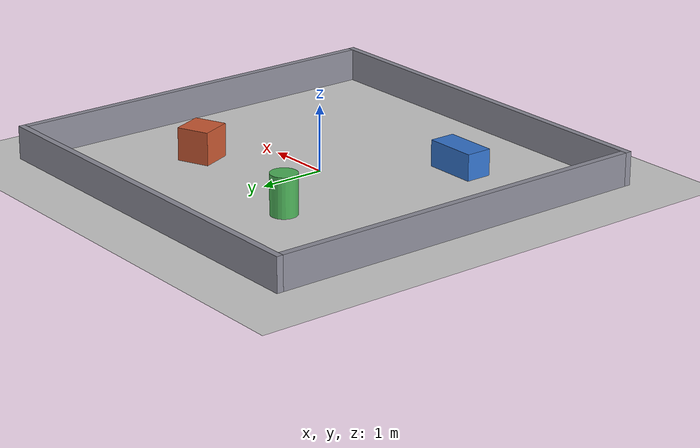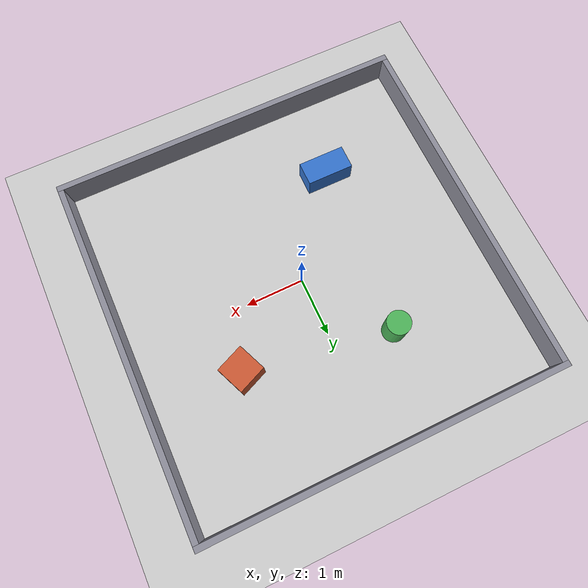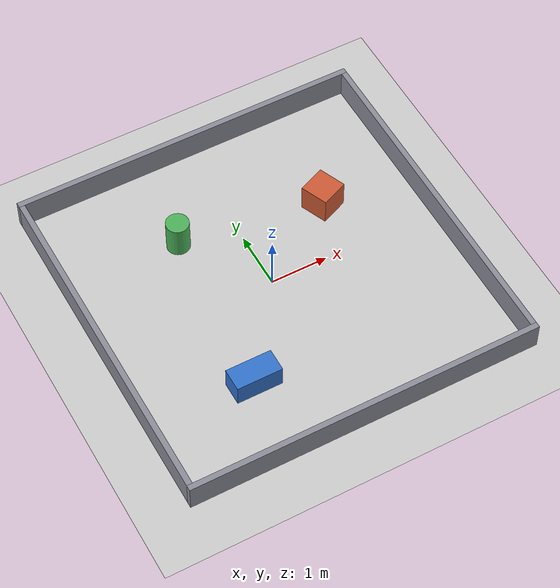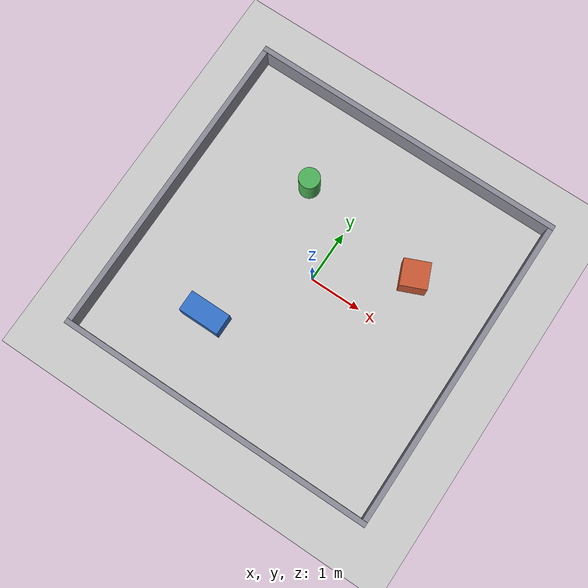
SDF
<?xml version="1.0" ?>
<sdf version="1.9">
  <world name="spiderx_fortress">

    <!-- GUI layout: the stock Fortress 6 layout (gui/gui.config) with the initial
         camera moved close to the robot and start_paused matching `-r`. -->
    <gui fullscreen="0">
      <!-- 3D scene -->
      <plugin filename="MinimalScene" name="3D View">
        <ignition-gui>
          <title>3D View</title>
          <property type="bool" key="showTitleBar">false</property>
          <property type="string" key="state">docked</property>
        </ignition-gui>

        <engine>ogre2</engine>
        <scene>scene</scene>
        <ambient_light>0.4 0.4 0.4</ambient_light>
        <background_color>0.8 0.8 0.8</background_color>
        <camera_pose>1.2 -1.2 0.75 0 0.41 2.37</camera_pose>
      </plugin>

      <!-- Plugins that add functionality to the scene -->
      <plugin filename="EntityContextMenuPlugin" name="Entity context menu">
        <ignition-gui>
          <property key="state" type="string">floating</property>
          <property key="width" type="double">5</property>
          <property key="height" type="double">5</property>
          <property key="showTitleBar" type="bool">false</property>
        </ignition-gui>
      </plugin>
      <plugin filename="GzSceneManager" name="Scene Manager">
        <ignition-gui>
          <property key="resizable" type="bool">false</property>
          <property key="width" type="double">5</property>
          <property key="height" type="double">5</property>
          <property key="state" type="string">floating</property>
          <property key="showTitleBar" type="bool">false</property>
        </ignition-gui>
      </plugin>
      <plugin filename="InteractiveViewControl" name="Interactive view control">
        <ignition-gui>
          <property key="resizable" type="bool">false</property>
          <property key="width" type="double">5</property>
          <property key="height" type="double">5</property>
          <property key="state" type="string">floating</property>
          <property key="showTitleBar" type="bool">false</property>
        </ignition-gui>
      </plugin>
      <plugin filename="CameraTracking" name="Camera Tracking">
        <ignition-gui>
          <property key="resizable" type="bool">false</property>
          <property key="width" type="double">5</property>
          <property key="height" type="double">5</property>
          <property key="state" type="string">floating</property>
          <property key="showTitleBar" type="bool">false</property>
        </ignition-gui>
      </plugin>
      <plugin filename="MarkerManager" name="Marker manager">
        <ignition-gui>
          <property key="resizable" type="bool">false</property>
          <property key="width" type="double">5</property>
          <property key="height" type="double">5</property>
          <property key="state" type="string">floating</property>
          <property key="showTitleBar" type="bool">false</property>
        </ignition-gui>
      </plugin>
      <plugin filename="SelectEntities" name="Select Entities">
        <ignition-gui>
          <property key="resizable" type="bool">false</property>
          <property key="width" type="double">5</property>
          <property key="height" type="double">5</property>
          <property key="state" type="string">floating</property>
          <property key="showTitleBar" type="bool">false</property>
        </ignition-gui>
      </plugin>

      <plugin filename="Spawn" name="Spawn Entities">
        <ignition-gui>
          <property key="resizable" type="bool">false</property>
          <property key="width" type="double">5</property>
          <property key="height" type="double">5</property>
          <property key="state" type="string">floating</property>
          <property key="showTitleBar" type="bool">false</property>
        </ignition-gui>
      </plugin>

      <plugin filename="VisualizationCapabilities" name="Visualization Capabilities">
        <ignition-gui>
          <property key="resizable" type="bool">false</property>
          <property key="width" type="double">5</property>
          <property key="height" type="double">5</property>
          <property key="state" type="string">floating</property>
          <property key="showTitleBar" type="bool">false</property>
        </ignition-gui>
      </plugin>

      <!-- World control -->
      <plugin filename="WorldControl" name="World control">
        <ignition-gui>
          <title>World control</title>
          <property type="bool" key="showTitleBar">false</property>
          <property type="bool" key="resizable">false</property>
          <property type="double" key="height">72</property>
          <property type="double" key="width">121</property>
          <property type="double" key="z">1</property>

          <property type="string" key="state">floating</property>
          <anchors target="3D View">
            <line own="left" target="left"/>
            <line own="bottom" target="bottom"/>
          </anchors>
        </ignition-gui>

        <play_pause>true</play_pause>
        <step>true</step>
        <start_paused>false</start_paused>
        <use_event>true</use_event>

      </plugin>

      <!-- World statistics -->
      <plugin filename="WorldStats" name="World stats">
        <ignition-gui>
          <title>World stats</title>
          <property type="bool" key="showTitleBar">false</property>
          <property type="bool" key="resizable">false</property>
          <property type="double" key="height">110</property>
          <property type="double" key="width">290</property>
          <property type="double" key="z">1</property>

          <property type="string" key="state">floating</property>
          <anchors target="3D View">
            <line own="right" target="right"/>
            <line own="bottom" target="bottom"/>
          </anchors>
        </ignition-gui>

        <sim_time>true</sim_time>
        <real_time>true</real_time>
        <real_time_factor>true</real_time_factor>
        <iterations>true</iterations>
      </plugin>

      <!-- Insert simple shapes -->
      <plugin filename="Shapes" name="Shapes">
        <ignition-gui>
          <property key="resizable" type="bool">false</property>
          <property key="x" type="double">0</property>
          <property key="y" type="double">0</property>
          <property key="width" type="double">250</property>
          <property key="height" type="double">50</property>
          <property key="state" type="string">floating</property>
          <property key="showTitleBar" type="bool">false</property>
          <property key="cardBackground" type="string">#666666</property>
        </ignition-gui>
      </plugin>

      <!-- Insert lights -->
      <plugin filename="Lights" name="Lights">
        <ignition-gui>
          <property key="resizable" type="bool">false</property>
          <property key="x" type="double">250</property>
          <property key="y" type="double">0</property>
          <property key="width" type="double">150</property>
          <property key="height" type="double">50</property>
          <property key="state" type="string">floating</property>
          <property key="showTitleBar" type="bool">false</property>
          <property key="cardBackground" type="string">#666666</property>
        </ignition-gui>
      </plugin>

      <!-- Translate / rotate -->
      <plugin filename="TransformControl" name="Transform control">
        <ignition-gui>
          <property key="resizable" type="bool">false</property>
          <property key="x" type="double">0</property>
          <property key="y" type="double">50</property>
          <property key="width" type="double">250</property>
          <property key="height" type="double">50</property>
          <property key="state" type="string">floating</property>
          <property key="showTitleBar" type="bool">false</property>
          <property key="cardBackground" type="string">#777777</property>
        </ignition-gui>

        <!-- disable legacy features used to connect this plugin to GzScene3D -->
        <legacy>false</legacy>
      </plugin>

      <!-- Screenshot -->
      <plugin filename="Screenshot" name="Screenshot">
        <ignition-gui>
          <property key="resizable" type="bool">false</property>
          <property key="x" type="double">250</property>
          <property key="y" type="double">50</property>
          <property key="width" type="double">50</property>
          <property key="height" type="double">50</property>
          <property key="state" type="string">floating</property>
          <property key="showTitleBar" type="bool">false</property>
          <property key="cardBackground" type="string">#777777</property>
        </ignition-gui>
      </plugin>

      <!-- Copy/Paste -->
      <plugin filename="CopyPaste" name="CopyPaste">
        <ignition-gui>
          <property key="resizable" type="bool">false</property>
          <property key="x" type="double">300</property>
          <property key="y" type="double">50</property>
          <property key="width" type="double">100</property>
          <property key="height" type="double">50</property>
          <property key="state" type="string">floating</property>
          <property key="showTitleBar" type="bool">false</property>
          <property key="cardBackground" type="string">#777777</property>
        </ignition-gui>
      </plugin>

      <!-- Inspector -->
      <plugin filename="ComponentInspector" name="Component inspector">
        <ignition-gui>
          <property type="bool" key="showTitleBar">false</property>
          <property type="string" key="state">docked</property>
        </ignition-gui>
      </plugin>

      <!-- Entity tree -->
      <plugin filename="EntityTree" name="Entity tree">
        <ignition-gui>
          <property type="bool" key="showTitleBar">false</property>
          <property type="string" key="state">docked</property>
        </ignition-gui>
      </plugin>
    </gui>

    <physics name="1ms" type="ignored">
      <max_step_size>0.001</max_step_size>
      <real_time_factor>1.0</real_time_factor>
    </physics>

    <plugin filename="ignition-gazebo-physics-system"
            name="ignition::gazebo::systems::Physics"/>
    <plugin filename="ignition-gazebo-user-commands-system"
            name="ignition::gazebo::systems::UserCommands"/>
    <plugin filename="ignition-gazebo-scene-broadcaster-system"
            name="ignition::gazebo::systems::SceneBroadcaster"/>
    <!-- Required for the gpu_lidar sensor on the robot. -->
    <plugin filename="ignition-gazebo-sensors-system"
            name="ignition::gazebo::systems::Sensors">
      <render_engine>ogre2</render_engine>
    </plugin>

    <gravity>0 0 -9.8</gravity>

    <scene>
      <ambient>0.4 0.4 0.4 1</ambient>
      <background>0.7 0.7 0.7 1</background>
      <shadows>true</shadows>
    </scene>

    <light type="directional" name="sun">
      <cast_shadows>true</cast_shadows>
      <pose>0 0 10 0 0 0</pose>
      <diffuse>0.8 0.8 0.8 1</diffuse>
      <specular>0.2 0.2 0.2 1</specular>
      <attenuation>
        <range>1000</range>
        <constant>0.9</constant>
        <linear>0.01</linear>
        <quadratic>0.001</quadratic>
      </attenuation>
      <direction>-0.5 0.1 -0.9</direction>
    </light>

    <model name="ground_plane">
      <static>true</static>
      <link name="link">
        <collision name="collision">
          <geometry>
            <plane>
              <normal>0 0 1</normal>
              <size>100 100</size>
            </plane>
          </geometry>
        </collision>
        <visual name="visual">
          <geometry>
            <plane>
              <normal>0 0 1</normal>
              <size>100 100</size>
            </plane>
          </geometry>
          <material>
            <ambient>0.8 0.8 0.8 1</ambient>
            <diffuse>0.8 0.8 0.8 1</diffuse>
            <specular>0.8 0.8 0.8 1</specular>
          </material>
        </visual>
      </link>
    </model>

    <!-- Enclosure: four 0.5 m high walls around a 6 m x 6 m area. -->
    <model name="walls">
      <static>true</static>
      <link name="wall_north">
        <pose>0 3.05 0.25 0 0 0</pose>
        <collision name="collision"><geometry><box><size>6.2 0.1 0.5</size></box></geometry></collision>
        <visual name="visual">
          <geometry><box><size>6.2 0.1 0.5</size></box></geometry>
          <material><ambient>0.55 0.55 0.6 1</ambient><diffuse>0.55 0.55 0.6 1</diffuse></material>
        </visual>
      </link>
      <link name="wall_south">
        <pose>0 -3.05 0.25 0 0 0</pose>
        <collision name="collision"><geometry><box><size>6.2 0.1 0.5</size></box></geometry></collision>
        <visual name="visual">
          <geometry><box><size>6.2 0.1 0.5</size></box></geometry>
          <material><ambient>0.55 0.55 0.6 1</ambient><diffuse>0.55 0.55 0.6 1</diffuse></material>
        </visual>
      </link>
      <link name="wall_east">
        <pose>3.05 0 0.25 0 0 0</pose>
        <collision name="collision"><geometry><box><size>0.1 6.0 0.5</size></box></geometry></collision>
        <visual name="visual">
          <geometry><box><size>0.1 6.0 0.5</size></box></geometry>
          <material><ambient>0.55 0.55 0.6 1</ambient><diffuse>0.55 0.55 0.6 1</diffuse></material>
        </visual>
      </link>
      <link name="wall_west">
        <pose>-3.05 0 0.25 0 0 0</pose>
        <collision name="collision"><geometry><box><size>0.1 6.0 0.5</size></box></geometry></collision>
        <visual name="visual">
          <geometry><box><size>0.1 6.0 0.5</size></box></geometry>
          <material><ambient>0.55 0.55 0.6 1</ambient><diffuse>0.55 0.55 0.6 1</diffuse></material>
        </visual>
      </link>
    </model>

    <model name="box_a">
      <static>true</static>
      <pose>1.5 1.0 0.25 0 0 0.4</pose>
      <link name="link">
        <collision name="collision"><geometry><box><size>0.5 0.5 0.5</size></box></geometry></collision>
        <visual name="visual">
          <geometry><box><size>0.5 0.5 0.5</size></box></geometry>
          <material><ambient>0.8 0.35 0.2 1</ambient><diffuse>0.8 0.35 0.2 1</diffuse></material>
        </visual>
      </link>
    </model>

    <model name="box_b">
      <static>true</static>
      <pose>-1.2 -1.6 0.2 0 0 0</pose>
      <link name="link">
        <collision name="collision"><geometry><box><size>0.8 0.4 0.4</size></box></geometry></collision>
        <visual name="visual">
          <geometry><box><size>0.8 0.4 0.4</size></box></geometry>
          <material><ambient>0.2 0.45 0.8 1</ambient><diffuse>0.2 0.45 0.8 1</diffuse></material>
        </visual>
      </link>
    </model>

    <model name="pillar">
      <static>true</static>
      <pose>-1.0 1.4 0.3 0 0 0</pose>
      <link name="link">
        <collision name="collision"><geometry><cylinder><radius>0.2</radius><length>0.6</length></cylinder></geometry></collision>
        <visual name="visual">
          <geometry><cylinder><radius>0.2</radius><length>0.6</length></cylinder></geometry>
          <material><ambient>0.3 0.7 0.35 1</ambient><diffuse>0.3 0.7 0.35 1</diffuse></material>
        </visual>
      </link>
    </model>

  </world>
</sdf>
